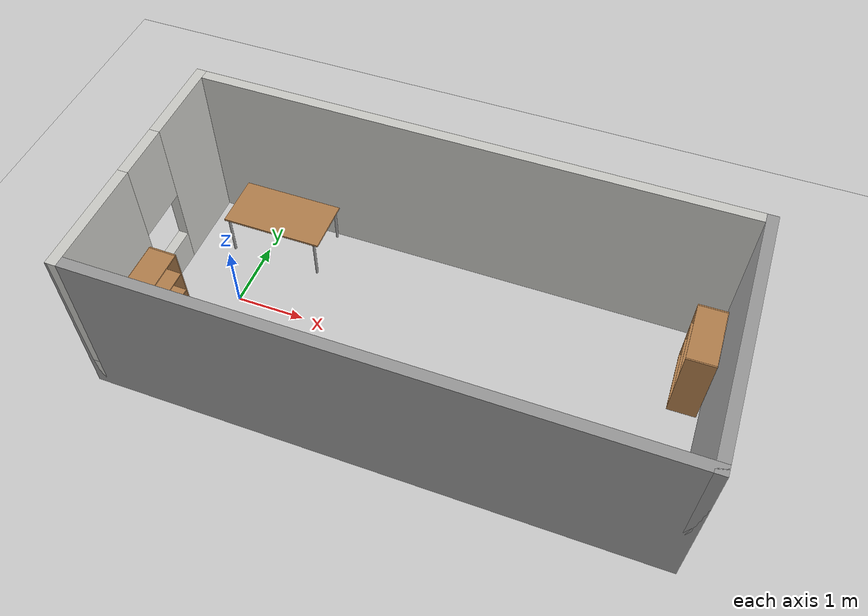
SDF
<sdf version="1.6">
 <world name="default">
  <light name="sun" type="directional">
   <pose>0 0 10 0 -0 0</pose>
   <diffuse>0.8 0.8 0.8 1</diffuse>
   <specular>0.2 0.2 0.2 1</specular>
   <attenuation>
    <range>1000</range>
    <constant>0.9</constant>
    <linear>0.01</linear>
    <quadratic>0.001</quadratic>
   </attenuation>
   <direction>-0.5 0.1 -0.9</direction>
  </light>
  <model name="ground_plane">
   <static>1</static>
   <link name="link">
    <collision name="collision">
     <geometry><plane><normal>0 0 1</normal><size>100 100</size></plane></geometry>
     <surface><friction><ode><mu>100</mu><mu2>50</mu2></ode></friction></surface>
    </collision>
    <visual name="visual">
     <cast_shadows>0</cast_shadows>
     <geometry><plane><normal>0 0 1</normal><size>100 100</size></plane></geometry>
     <material>
      <script><uri>file://media/materials/scripts/gazebo.material</uri><name>Gazebo/Grey</name></script>
     </material>
    </visual>
   </link>
  </model>
  <gravity>0 0 -9.8</gravity>
  <magnetic_field>6e-06 2.3e-05 -4.2e-05</magnetic_field>
  <atmosphere type="adiabatic"/>
  <physics name="default_physics" default="0" type="ode">
   <max_step_size>0.001</max_step_size>
   <real_time_factor>1</real_time_factor>
   <real_time_update_rate>1000</real_time_update_rate>
  </physics>
  <scene><ambient>0.4 0.4 0.4 1</ambient><background>0.7 0.7 0.7 1</background><shadows>1</shadows></scene>
  <audio><device>default</device></audio>
  <spherical_coordinates>
   <surface_model>EARTH_WGS84</surface_model>
   <latitude_deg>0</latitude_deg>
   <longitude_deg>0</longitude_deg>
   <elevation>0</elevation>
   <heading_deg>0</heading_deg>
  </spherical_coordinates>
  <model name="sampleModel">
   <pose>2.81582 -0.050001 0 0 -0 0</pose>
   <link name="Wall_0">
    <pose>-3.925 0 0 0 -0 -1.5708</pose>
    <visual name="Wall_0_Visual_0">
     <pose>-1.2175 0 1.25 0 -0 0</pose>
     <geometry><box><size>1.315 0.15 2.5</size></box></geometry>
     <material>
      <script><uri>file://media/materials/scripts/gazebo.material</uri><name>Gazebo/CeilingTiled</name></script>
      <ambient>1 1 1 1</ambient>
     </material>
     <meta><layer>0</layer></meta>
    </visual>
    <collision name="Wall_0_Collision_0">
     <geometry><box><size>1.315 0.15 2.5</size></box></geometry>
     <pose>-1.2175 0 1.25 0 -0 0</pose>
    </collision>
    <visual name="Wall_0_Visual_1">
     <pose>0.6575 0 0.25 0 -0 0</pose>
     <geometry><box><size>2.435 0.15 0.5</size></box></geometry>
     <material>
      <script><uri>file://media/materials/scripts/gazebo.material</uri><name>Gazebo/CeilingTiled</name></script>
      <ambient>1 1 1 1</ambient>
     </material>
     <meta><layer>0</layer></meta>
    </visual>
    <collision name="Wall_0_Collision_1">
     <geometry><box><size>2.435 0.15 0.5</size></box></geometry>
     <pose>0.6575 0 0.25 0 -0 0</pose>
    </collision>
    <visual name="Wall_0_Visual_2">
     <pose>1.0575 0 1.5 0 -0 0</pose>
     <geometry><box><size>1.635 0.15 2</size></box></geometry>
     <material>
      <script><uri>file://media/materials/scripts/gazebo.material</uri><name>Gazebo/CeilingTiled</name></script>
      <ambient>1 1 1 1</ambient>
     </material>
     <meta><layer>0</layer></meta>
    </visual>
    <collision name="Wall_0_Collision_2">
     <geometry><box><size>1.635 0.15 2</size></box></geometry>
     <pose>1.0575 0 1.5 0 -0 0</pose>
    </collision>
    <visual name="Wall_0_Visual_3">
     <pose>-0.16 0 1.9 0 -0 0</pose>
     <geometry><box><size>0.8 0.15 1.2</size></box></geometry>
     <material>
      <script><uri>file://media/materials/scripts/gazebo.material</uri><name>Gazebo/CeilingTiled</name></script>
      <ambient>1 1 1 1</ambient>
     </material>
     <meta><layer>0</layer></meta>
    </visual>
    <collision name="Wall_0_Collision_3">
     <geometry><box><size>0.8 0.15 1.2</size></box></geometry>
     <pose>-0.16 0 1.9 0 -0 0</pose>
    </collision>
   </link>
   <link name="Wall_1">
    <collision name="Wall_1_Collision">
     <geometry><box><size>8 0.15 2.5</size></box></geometry>
     <pose>0 0 1.25 0 -0 0</pose>
    </collision>
    <visual name="Wall_1_Visual">
     <pose>0 0 1.25 0 -0 0</pose>
     <geometry><box><size>8 0.15 2.5</size></box></geometry>
     <material>
      <script><uri>file://media/materials/scripts/gazebo.material</uri><name>Gazebo/Grey</name></script>
      <ambient>1 1 1 1</ambient>
     </material>
     <meta><layer>0</layer></meta>
    </visual>
    <pose>-0 -1.8 0 0 -0 0</pose>
   </link>
   <link name="Wall_2">
    <collision name="Wall_2_Collision">
     <geometry><box><size>3.75 0.15 2.5</size></box></geometry>
     <pose>0 0 1.25 0 -0 0</pose>
    </collision>
    <visual name="Wall_2_Visual">
     <pose>0 0 1.25 0 -0 0</pose>
     <geometry><box><size>3.75 0.15 2.5</size></box></geometry>
     <material>
      <script><uri>file://media/materials/scripts/gazebo.material</uri><name>Gazebo/Grey</name></script>
      <ambient>1 1 1 1</ambient>
     </material>
     <meta><layer>0</layer></meta>
    </visual>
    <pose>3.925 0 0 0 -0 1.5708</pose>
   </link>
   <link name="Wall_3">
    <collision name="Wall_3_Collision">
     <geometry><box><size>8 0.15 2.5</size></box></geometry>
     <pose>0 0 1.25 0 -0 0</pose>
    </collision>
    <visual name="Wall_3_Visual">
     <pose>0 0 1.25 0 -0 0</pose>
     <geometry><box><size>8 0.15 2.5</size></box></geometry>
     <material>
      <script><uri>file://media/materials/scripts/gazebo.material</uri><name>Gazebo/CeilingTiled</name></script>
      <ambient>1 1 1 1</ambient>
     </material>
     <meta><layer>0</layer></meta>
    </visual>
    <pose>-0 1.8 0 0 -0 3.14159</pose>
   </link>
   <static>1</static>
  </model>
  <model name="bookshelf_0">
   <static>1</static>
   <link name="link">
    <inertial><mass>1</mass></inertial>
    <collision name="back">
     <pose>0 0.005 0.6 0 -0 0</pose>
     <geometry><box><size>0.9 0.01 1.2</size></box></geometry>
    </collision>
    <visual name="visual1">
     <pose>0 0.005 0.6 0 -0 0</pose>
     <geometry><box><size>0.9 0.01 1.2</size></box></geometry>
     <material>
      <script><uri>file://media/materials/scripts/gazebo.material</uri><name>Gazebo/Wood</name></script>
     </material>
    </visual>
    <collision name="left_side">
     <pose>0.45 -0.195 0.6 0 -0 0</pose>
     <geometry><box><size>0.02 0.4 1.2</size></box></geometry>
    </collision>
    <visual name="visual2">
     <pose>0.45 -0.195 0.6 0 -0 0</pose>
     <geometry><box><size>0.02 0.4 1.2</size></box></geometry>
     <material>
      <script><uri>file://media/materials/scripts/gazebo.material</uri><name>Gazebo/Wood</name></script>
     </material>
    </visual>
    <collision name="right_side">
     <pose>-0.45 -0.195 0.6 0 -0 0</pose>
     <geometry><box><size>0.02 0.4 1.2</size></box></geometry>
    </collision>
    <visual name="visual3">
     <pose>-0.45 -0.195 0.6 0 -0 0</pose>
     <geometry><box><size>0.02 0.4 1.2</size></box></geometry>
     <material>
      <script><uri>file://media/materials/scripts/gazebo.material</uri><name>Gazebo/Wood</name></script>
     </material>
    </visual>
    <collision name="bottom">
     <pose>0 -0.195 0.03 0 -0 0</pose>
     <geometry><box><size>0.88 0.4 0.06</size></box></geometry>
    </collision>
    <visual name="visual4">
     <pose>0 -0.195 0.03 0 -0 0</pose>
     <geometry><box><size>0.88 0.4 0.06</size></box></geometry>
     <material>
      <script><uri>file://media/materials/scripts/gazebo.material</uri><name>Gazebo/Wood</name></script>
     </material>
    </visual>
    <collision name="top">
     <pose>0 -0.195 1.19 0 -0 0</pose>
     <geometry><box><size>0.88 0.4 0.02</size></box></geometry>
    </collision>
    <visual name="visual5">
     <pose>0 -0.195 1.19 0 -0 0</pose>
     <geometry><box><size>0.88 0.4 0.02</size></box></geometry>
     <material>
      <script><uri>file://media/materials/scripts/gazebo.material</uri><name>Gazebo/Wood</name></script>
     </material>
    </visual>
    <collision name="low_shelf">
     <pose>0 -0.195 0.43 0 -0 0</pose>
     <geometry><box><size>0.88 0.4 0.02</size></box></geometry>
    </collision>
    <visual name="visual6">
     <pose>0 -0.195 0.43 0 -0 0</pose>
     <geometry><box><size>0.88 0.4 0.02</size></box></geometry>
     <material>
      <script><uri>file://media/materials/scripts/gazebo.material</uri><name>Gazebo/Wood</name></script>
     </material>
    </visual>
    <collision name="high_shelf">
     <pose>0 -0.195 0.8 0 -0 0</pose>
     <geometry><box><size>0.88 0.4 0.02</size></box></geometry>
    </collision>
    <visual name="visual7">
     <pose>0 -0.195 0.8 0 -0 0</pose>
     <geometry><box><size>0.88 0.4 0.02</size></box></geometry>
     <material>
      <script><uri>file://media/materials/scripts/gazebo.material</uri><name>Gazebo/Wood</name></script>
     </material>
    </visual>
   </link>
   <pose>-0.533585 -1.73894 0.000509 4.9e-05 -0.00224 3.11979</pose>
  </model>
  <model name="cabinet">
   <static>1</static>
   <link name="cabinet_bottom_plate">
    <inertial>
     <pose>0 0 -1 0 -0 0</pose>
     <inertia><ixx>2.05</ixx><ixy>0</ixy><ixz>0</ixz><iyy>2.05</iyy><iyz>0</iyz><izz>2.05</izz></inertia>
     <mass>25</mass>
    </inertial>
    <collision name="cabinet_bottom_plate_geom">
     <pose>0 0 0.01 0 -0 0</pose>
     <geometry><box><size>0.45 0.45 0.02</size></box></geometry>
    </collision>
    <visual name="cabinet_bottom_plate_geom_visual">
     <pose>0 0 0.01 0 -0 0</pose>
     <geometry><box><size>0.45 0.45 0.02</size></box></geometry>
     <material>
      <script><uri>file://media/materials/scripts/gazebo.material</uri><name>Gazebo/Wood</name></script>
     </material>
    </visual>
    <collision name="cabinet_bottom_plate_geom_cabinet_back_plate">
     <pose>0.235 0 0.51 0 -0 0</pose>
     <geometry><box><size>0.02 0.45 1.02</size></box></geometry>
    </collision>
    <visual name="cabinet_bottom_plate_geom_cabinet_back_plate_visual">
     <pose>0.235 0 0.51 0 -0 0</pose>
     <geometry><box><size>0.02 0.45 1.02</size></box></geometry>
     <material>
      <script><uri>file://media/materials/scripts/gazebo.material</uri><name>Gazebo/Wood</name></script>
     </material>
    </visual>
    <collision name="cabinet_bottom_plate_geom_cabinet_left_plate">
     <pose>0 0.235 0.51 0 -0 0</pose>
     <geometry><box><size>0.45 0.02 1.02</size></box></geometry>
    </collision>
    <visual name="cabinet_bottom_plate_geom_cabinet_left_plate_visual">
     <pose>0 0.235 0.51 0 -0 0</pose>
     <geometry><box><size>0.45 0.02 1.02</size></box></geometry>
     <material>
      <script><uri>file://media/materials/scripts/gazebo.material</uri><name>Gazebo/Wood</name></script>
     </material>
    </visual>
    <collision name="cabinet_bottom_plate_geom_cabinet_middle_plate">
     <pose>0 0 0.51 0 -0 0</pose>
     <geometry><box><size>0.45 0.45 0.02</size></box></geometry>
    </collision>
    <visual name="cabinet_bottom_plate_geom_cabinet_middle_plate_visual">
     <pose>0 0 0.51 0 -0 0</pose>
     <geometry><box><size>0.45 0.45 0.02</size></box></geometry>
     <material>
      <script><uri>file://media/materials/scripts/gazebo.material</uri><name>Gazebo/Wood</name></script>
     </material>
    </visual>
    <collision name="cabinet_bottom_plate_geom_cabinet_right_plate">
     <pose>0 -0.235 0.51 0 -0 0</pose>
     <geometry><box><size>0.45 0.02 1.02</size></box></geometry>
    </collision>
    <visual name="cabinet_bottom_plate_geom_cabinet_right_plate_visual">
     <pose>0 -0.235 0.51 0 -0 0</pose>
     <geometry><box><size>0.45 0.02 1.02</size></box></geometry>
     <material>
      <script><uri>file://media/materials/scripts/gazebo.material</uri><name>Gazebo/Wood</name></script>
     </material>
    </visual>
    <collision name="cabinet_bottom_plate_geom_cabinet_top_plate">
     <pose>0 0 1.01 0 -0 0</pose>
     <geometry><box><size>0.45 0.45 0.02</size></box></geometry>
    </collision>
    <visual name="cabinet_bottom_plate_geom_cabinet_top_plate_visual">
     <pose>0 0 1.01 0 -0 0</pose>
     <geometry><box><size>0.45 0.45 0.02</size></box></geometry>
     <material>
      <script><uri>file://media/materials/scripts/gazebo.material</uri><name>Gazebo/Wood</name></script>
     </material>
    </visual>
   </link>
   <pose>2.51491 -1.51438 0 0 -0 -1.55422</pose>
  </model>
  <model name="table">
   <static>1</static>
   <link name="link">
    <collision name="surface">
     <pose>0 0 1 0 -0 0</pose>
     <geometry><box><size>1.5 0.8 0.03</size></box></geometry>
     <surface><friction><ode><mu>0.6</mu><mu2>0.6</mu2></ode></friction></surface>
    </collision>
    <visual name="visual1">
     <pose>0 0 1 0 -0 0</pose>
     <geometry><box><size>1.5 0.8 0.03</size></box></geometry>
     <material>
      <script><uri>file://media/materials/scripts/gazebo.material</uri><name>Gazebo/Wood</name></script>
     </material>
    </visual>
    <collision name="front_left_leg">
     <pose>0.68 0.38 0.5 0 -0 0</pose>
     <geometry><cylinder><radius>0.02</radius><length>1</length></cylinder></geometry>
    </collision>
    <visual name="front_left_leg">
     <pose>0.68 0.38 0.5 0 -0 0</pose>
     <geometry><cylinder><radius>0.02</radius><length>1</length></cylinder></geometry>
     <material>
      <script><uri>file://media/materials/scripts/gazebo.material</uri><name>Gazebo/Grey</name></script>
     </material>
    </visual>
    <collision name="front_right_leg">
     <pose>0.68 -0.38 0.5 0 -0 0</pose>
     <geometry><cylinder><radius>0.02</radius><length>1</length></cylinder></geometry>
    </collision>
    <visual name="front_right_leg">
     <pose>0.68 -0.38 0.5 0 -0 0</pose>
     <geometry><cylinder><radius>0.02</radius><length>1</length></cylinder></geometry>
     <material>
      <script><uri>file://media/materials/scripts/gazebo.material</uri><name>Gazebo/Grey</name></script>
     </material>
    </visual>
    <collision name="back_right_leg">
     <pose>-0.68 -0.38 0.5 0 -0 0</pose>
     <geometry><cylinder><radius>0.02</radius><length>1</length></cylinder></geometry>
    </collision>
    <visual name="back_right_leg">
     <pose>-0.68 -0.38 0.5 0 -0 0</pose>
     <geometry><cylinder><radius>0.02</radius><length>1</length></cylinder></geometry>
     <material>
      <script><uri>file://media/materials/scripts/gazebo.material</uri><name>Gazebo/Grey</name></script>
     </material>
    </visual>
    <collision name="back_left_leg">
     <pose>-0.68 0.38 0.5 0 -0 0</pose>
     <geometry><cylinder><radius>0.02</radius><length>1</length></cylinder></geometry>
    </collision>
    <visual name="back_left_leg">
     <pose>-0.68 0.38 0.5 0 -0 0</pose>
     <geometry><cylinder><radius>0.02</radius><length>1</length></cylinder></geometry>
     <material>
      <script><uri>file://media/materials/scripts/gazebo.material</uri><name>Gazebo/Grey</name></script>
     </material>
    </visual>
   </link>
   <pose>0.168941 1.24324 -0.376255 0 -0 0</pose>
  </model>
  <model name="bookshelf_1">
   <static>1</static>
   <link name="link">
    <inertial><mass>1</mass></inertial>
    <collision name="back">
     <pose>0 0.005 0.6 0 -0 0</pose>
     <geometry><box><size>0.9 0.01 1.2</size></box></geometry>
    </collision>
    <visual name="visual1">
     <pose>0 0.005 0.6 0 -0 0</pose>
     <geometry><box><size>0.9 0.01 1.2</size></box></geometry>
     <material>
      <script><uri>file://media/materials/scripts/gazebo.material</uri><name>Gazebo/Wood</name></script>
     </material>
    </visual>
    <collision name="left_side">
     <pose>0.45 -0.195 0.6 0 -0 0</pose>
     <geometry><box><size>0.02 0.4 1.2</size></box></geometry>
    </collision>
    <visual name="visual2">
     <pose>0.45 -0.195 0.6 0 -0 0</pose>
     <geometry><box><size>0.02 0.4 1.2</size></box></geometry>
     <material>
      <script><uri>file://media/materials/scripts/gazebo.material</uri><name>Gazebo/Wood</name></script>
     </material>
    </visual>
    <collision name="right_side">
     <pose>-0.45 -0.195 0.6 0 -0 0</pose>
     <geometry><box><size>0.02 0.4 1.2</size></box></geometry>
    </collision>
    <visual name="visual3">
     <pose>-0.45 -0.195 0.6 0 -0 0</pose>
     <geometry><box><size>0.02 0.4 1.2</size></box></geometry>
     <material>
      <script><uri>file://media/materials/scripts/gazebo.material</uri><name>Gazebo/Wood</name></script>
     </material>
    </visual>
    <collision name="bottom">
     <pose>0 -0.195 0.03 0 -0 0</pose>
     <geometry><box><size>0.88 0.4 0.06</size></box></geometry>
    </collision>
    <visual name="visual4">
     <pose>0 -0.195 0.03 0 -0 0</pose>
     <geometry><box><size>0.88 0.4 0.06</size></box></geometry>
     <material>
      <script><uri>file://media/materials/scripts/gazebo.material</uri><name>Gazebo/Wood</name></script>
     </material>
    </visual>
    <collision name="top">
     <pose>0 -0.195 1.19 0 -0 0</pose>
     <geometry><box><size>0.88 0.4 0.02</size></box></geometry>
    </collision>
    <visual name="visual5">
     <pose>0 -0.195 1.19 0 -0 0</pose>
     <geometry><box><size>0.88 0.4 0.02</size></box></geometry>
     <material>
      <script><uri>file://media/materials/scripts/gazebo.material</uri><name>Gazebo/Wood</name></script>
     </material>
    </visual>
    <collision name="low_shelf">
     <pose>0 -0.195 0.43 0 -0 0</pose>
     <geometry><box><size>0.88 0.4 0.02</size></box></geometry>
    </collision>
    <visual name="visual6">
     <pose>0 -0.195 0.43 0 -0 0</pose>
     <geometry><box><size>0.88 0.4 0.02</size></box></geometry>
     <material>
      <script><uri>file://media/materials/scripts/gazebo.material</uri><name>Gazebo/Wood</name></script>
     </material>
    </visual>
    <collision name="high_shelf">
     <pose>0 -0.195 0.8 0 -0 0</pose>
     <geometry><box><size>0.88 0.4 0.02</size></box></geometry>
    </collision>
    <visual name="visual7">
     <pose>0 -0.195 0.8 0 -0 0</pose>
     <geometry><box><size>0.88 0.4 0.02</size></box></geometry>
     <material>
      <script><uri>file://media/materials/scripts/gazebo.material</uri><name>Gazebo/Wood</name></script>
     </material>
    </visual>
   </link>
   <pose>-0.973809 -0.831531 2.8e-05 0.000732 -0.022257 1.55802</pose>
  </model>
  <model name="bookshelf_2">
   <static>1</static>
   <link name="link">
    <inertial><mass>1</mass></inertial>
    <collision name="back">
     <pose>0 0.005 0.6 0 -0 0</pose>
     <geometry><box><size>0.9 0.01 1.2</size></box></geometry>
    </collision>
    <visual name="visual1">
     <pose>0 0.005 0.6 0 -0 0</pose>
     <geometry><box><size>0.9 0.01 1.2</size></box></geometry>
     <material>
      <script><uri>file://media/materials/scripts/gazebo.material</uri><name>Gazebo/Wood</name></script>
     </material>
    </visual>
    <collision name="left_side">
     <pose>0.45 -0.195 0.6 0 -0 0</pose>
     <geometry><box><size>0.02 0.4 1.2</size></box></geometry>
    </collision>
    <visual name="visual2">
     <pose>0.45 -0.195 0.6 0 -0 0</pose>
     <geometry><box><size>0.02 0.4 1.2</size></box></geometry>
     <material>
      <script><uri>file://media/materials/scripts/gazebo.material</uri><name>Gazebo/Wood</name></script>
     </material>
    </visual>
    <collision name="right_side">
     <pose>-0.45 -0.195 0.6 0 -0 0</pose>
     <geometry><box><size>0.02 0.4 1.2</size></box></geometry>
    </collision>
    <visual name="visual3">
     <pose>-0.45 -0.195 0.6 0 -0 0</pose>
     <geometry><box><size>0.02 0.4 1.2</size></box></geometry>
     <material>
      <script><uri>file://media/materials/scripts/gazebo.material</uri><name>Gazebo/Wood</name></script>
     </material>
    </visual>
    <collision name="bottom">
     <pose>0 -0.195 0.03 0 -0 0</pose>
     <geometry><box><size>0.88 0.4 0.06</size></box></geometry>
    </collision>
    <visual name="visual4">
     <pose>0 -0.195 0.03 0 -0 0</pose>
     <geometry><box><size>0.88 0.4 0.06</size></box></geometry>
     <material>
      <script><uri>file://media/materials/scripts/gazebo.material</uri><name>Gazebo/Wood</name></script>
     </material>
    </visual>
    <collision name="top">
     <pose>0 -0.195 1.19 0 -0 0</pose>
     <geometry><box><size>0.88 0.4 0.02</size></box></geometry>
    </collision>
    <visual name="visual5">
     <pose>0 -0.195 1.19 0 -0 0</pose>
     <geometry><box><size>0.88 0.4 0.02</size></box></geometry>
     <material>
      <script><uri>file://media/materials/scripts/gazebo.material</uri><name>Gazebo/Wood</name></script>
     </material>
    </visual>
    <collision name="low_shelf">
     <pose>0 -0.195 0.43 0 -0 0</pose>
     <geometry><box><size>0.88 0.4 0.02</size></box></geometry>
    </collision>
    <visual name="visual6">
     <pose>0 -0.195 0.43 0 -0 0</pose>
     <geometry><box><size>0.88 0.4 0.02</size></box></geometry>
     <material>
      <script><uri>file://media/materials/scripts/gazebo.material</uri><name>Gazebo/Wood</name></script>
     </material>
    </visual>
    <collision name="high_shelf">
     <pose>0 -0.195 0.8 0 -0 0</pose>
     <geometry><box><size>0.88 0.4 0.02</size></box></geometry>
    </collision>
    <visual name="visual7">
     <pose>0 -0.195 0.8 0 -0 0</pose>
     <geometry><box><size>0.88 0.4 0.02</size></box></geometry>
     <material>
      <script><uri>file://media/materials/scripts/gazebo.material</uri><name>Gazebo/Wood</name></script>
     </material>
    </visual>
   </link>
   <pose>6.62312 0.784634 0 0 0 -1.56136</pose>
  </model>
 </world>
</sdf>
